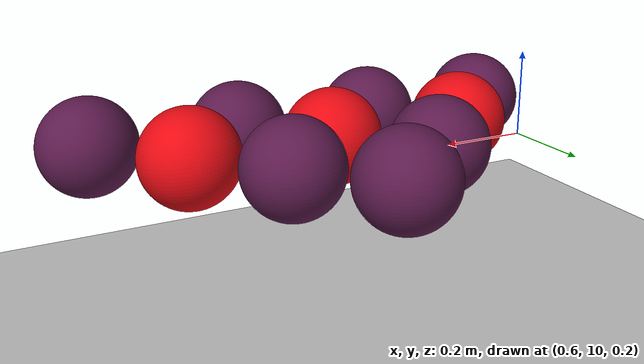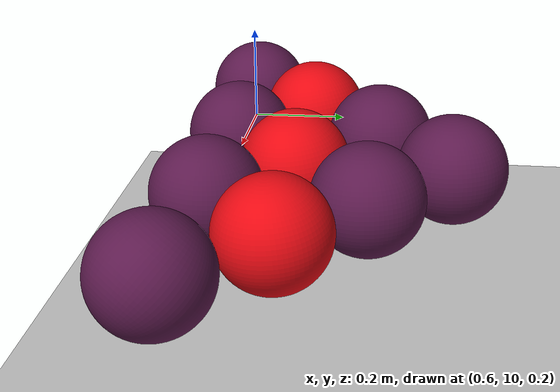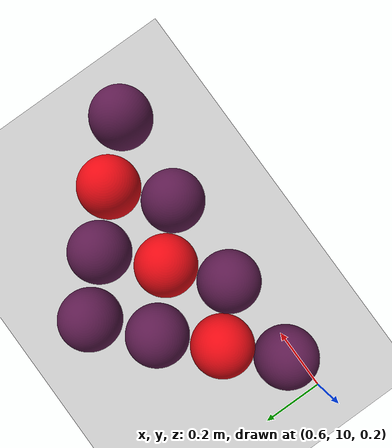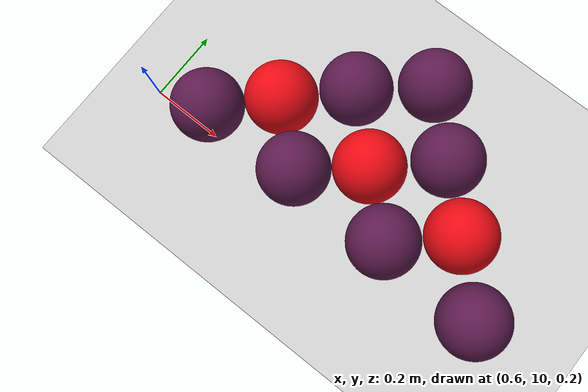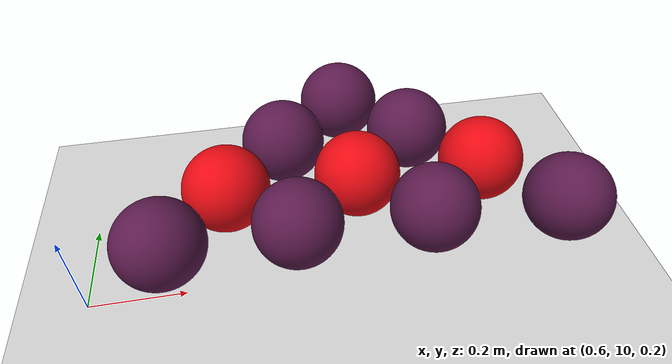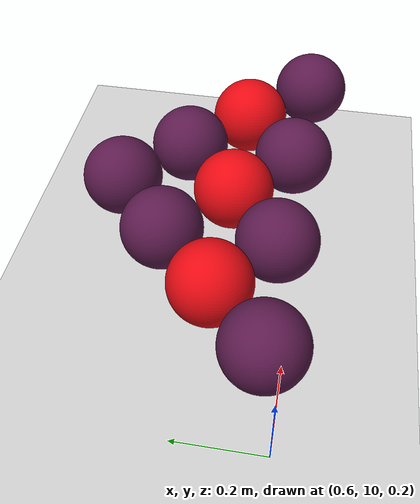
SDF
<sdf version="1.7">
 <world name="default">
  <model name="ground_plane">
   <static>1</static>
   <link name="link">
    <collision name="collision">
     <geometry><plane><normal>0 0 1</normal><size>100 100</size></plane></geometry>
     <surface>
      <contact><collide_bitmask>65535</collide_bitmask></contact>
      <friction><ode><mu>100</mu><mu2>50</mu2></ode></friction>
     </surface>
    </collision>
    <visual name="visual">
     <cast_shadows>0</cast_shadows>
     <geometry><plane><normal>0 0 1</normal><size>100 100</size></plane></geometry>
     <material>
      <script><uri>file://media/materials/scripts/gazebo.material</uri><name>Gazebo/Grey</name></script>
     </material>
    </visual>
   </link>
  </model>
  <model name="ball_red_5">
   <link name="link_1">
    <inertial>
     <mass>1</mass>
     <inertia>
      <ixx>0.166667</ixx>
      <ixy>0</ixy>
      <ixz>0</ixz>
      <iyy>0.166667</iyy>
      <iyz>0</iyz>
      <izz>0.166667</izz>
     </inertia>
    </inertial>
    <visual name="visual">
     <geometry>
      <mesh><uri>/home/entity014/abu2024_ws/src/abu_description/worlds/ball_red.dae</uri><scale>1 1 1</scale></mesh>
     </geometry>
    </visual>
    <collision name="collision">
     <geometry>
      <mesh><uri>/home/entity014/abu2024_ws/src/abu_description/worlds/ball_red.dae</uri><scale>1 1 1</scale></mesh>
     </geometry>
     <surface>
      <friction>
       <ode><mu>1</mu><mu2>1</mu2><fdir1>0 0 0</fdir1><slip1>0</slip1><slip2>0</slip2></ode>
       <torsional>
        <coefficient>1</coefficient>
        <patch_radius>0</patch_radius>
        <surface_radius>0</surface_radius>
        <use_patch_radius>1</use_patch_radius>
        <ode><slip>0</slip></ode>
       </torsional>
      </friction>
      <bounce><restitution_coefficient>0</restitution_coefficient><threshold>1e+06</threshold></bounce>
      <contact>
       <collide_without_contact>0</collide_without_contact>
       <collide_without_contact_bitmask>1</collide_without_contact_bitmask>
       <collide_bitmask>1</collide_bitmask>
       <ode>
        <soft_cfm>0</soft_cfm>
        <soft_erp>0.2</soft_erp>
        <kp>1e+13</kp>
        <kd>1</kd>
        <max_vel>0.01</max_vel>
        <min_depth>0</min_depth>
       </ode>
       <bullet>
        <split_impulse>1</split_impulse>
        <split_impulse_penetration_threshold>-0.01</split_impulse_penetration_threshold>
        <soft_cfm>0</soft_cfm>
        <soft_erp>0.2</soft_erp>
        <kp>1e+13</kp>
        <kd>1</kd>
       </bullet>
      </contact>
     </surface>
    </collision>
   </link>
   <static>0</static>
   <pose>1.18942 10.1655 0.322548 0.10994 0.052948 0.076929</pose>
  </model>
  <model name="ball_empty_0_clone_8_clone_1">
   <link name="link_1">
    <inertial>
     <mass>1</mass>
     <inertia>
      <ixx>0.166667</ixx>
      <ixy>0</ixy>
      <ixz>0</ixz>
      <iyy>0.166667</iyy>
      <iyz>0</iyz>
      <izz>0.166667</izz>
     </inertia>
    </inertial>
    <visual name="visual">
     <geometry>
      <mesh>
       <uri>/home/entity014/abu2024_ws/src/abu_description/worlds/ball_empty.dae</uri>
       <scale>1 1 1</scale>
      </mesh>
     </geometry>
    </visual>
    <collision name="collision">
     <geometry>
      <mesh>
       <uri>/home/entity014/abu2024_ws/src/abu_description/worlds/ball_empty.dae</uri>
       <scale>1 1 1</scale>
      </mesh>
     </geometry>
     <surface>
      <friction>
       <ode><mu>1</mu><mu2>1</mu2><fdir1>0 0 0</fdir1><slip1>0</slip1><slip2>0</slip2></ode>
       <torsional>
        <coefficient>1</coefficient>
        <patch_radius>0</patch_radius>
        <surface_radius>0</surface_radius>
        <use_patch_radius>1</use_patch_radius>
        <ode><slip>0</slip></ode>
       </torsional>
      </friction>
      <bounce><restitution_coefficient>0</restitution_coefficient><threshold>1e+06</threshold></bounce>
      <contact>
       <collide_without_contact>0</collide_without_contact>
       <collide_without_contact_bitmask>1</collide_without_contact_bitmask>
       <collide_bitmask>1</collide_bitmask>
       <ode>
        <soft_cfm>0</soft_cfm>
        <soft_erp>0.2</soft_erp>
        <kp>1e+13</kp>
        <kd>1</kd>
        <max_vel>0.01</max_vel>
        <min_depth>0</min_depth>
       </ode>
       <bullet>
        <split_impulse>1</split_impulse>
        <split_impulse_penetration_threshold>-0.01</split_impulse_penetration_threshold>
        <soft_cfm>0</soft_cfm>
        <soft_erp>0.2</soft_erp>
        <kp>1e+13</kp>
        <kd>1</kd>
       </bullet>
      </contact>
     </surface>
    </collision>
   </link>
   <static>0</static>
   <pose>1.62177 10.0175 0.322545 2.42219 0.496961 1.14836</pose>
  </model>
  <model name="ball_empty_0_clone_8_clone_2">
   <link name="link_1">
    <inertial>
     <mass>1</mass>
     <inertia>
      <ixx>0.166667</ixx>
      <ixy>0</ixy>
      <ixz>0</ixz>
      <iyy>0.166667</iyy>
      <iyz>0</iyz>
      <izz>0.166667</izz>
     </inertia>
    </inertial>
    <visual name="visual">
     <geometry>
      <mesh>
       <uri>/home/entity014/abu2024_ws/src/abu_description/worlds/ball_empty.dae</uri>
       <scale>1 1 1</scale>
      </mesh>
     </geometry>
    </visual>
    <collision name="collision">
     <geometry>
      <mesh>
       <uri>/home/entity014/abu2024_ws/src/abu_description/worlds/ball_empty.dae</uri>
       <scale>1 1 1</scale>
      </mesh>
     </geometry>
     <surface>
      <friction>
       <ode><mu>1</mu><mu2>1</mu2><fdir1>0 0 0</fdir1><slip1>0</slip1><slip2>0</slip2></ode>
       <torsional>
        <coefficient>1</coefficient>
        <patch_radius>0</patch_radius>
        <surface_radius>0</surface_radius>
        <use_patch_radius>1</use_patch_radius>
        <ode><slip>0</slip></ode>
       </torsional>
      </friction>
      <bounce><restitution_coefficient>0</restitution_coefficient><threshold>1e+06</threshold></bounce>
      <contact>
       <collide_without_contact>0</collide_without_contact>
       <collide_without_contact_bitmask>1</collide_without_contact_bitmask>
       <collide_bitmask>1</collide_bitmask>
       <ode>
        <soft_cfm>0</soft_cfm>
        <soft_erp>0.2</soft_erp>
        <kp>1e+13</kp>
        <kd>1</kd>
        <max_vel>0.01</max_vel>
        <min_depth>0</min_depth>
       </ode>
       <bullet>
        <split_impulse>1</split_impulse>
        <split_impulse_penetration_threshold>-0.01</split_impulse_penetration_threshold>
        <soft_cfm>0</soft_cfm>
        <soft_erp>0.2</soft_erp>
        <kp>1e+13</kp>
        <kd>1</kd>
       </bullet>
      </contact>
     </surface>
    </collision>
   </link>
   <static>0</static>
   <pose>1.33196 10.0369 0.322557 -0.031263 0.023654 0.046097</pose>
  </model>
  <model name="ball_empty_0_clone_8_clone_3">
   <link name="link_1">
    <inertial>
     <mass>1</mass>
     <inertia>
      <ixx>0.166667</ixx>
      <ixy>0</ixy>
      <ixz>0</ixz>
      <iyy>0.166667</iyy>
      <iyz>0</iyz>
      <izz>0.166667</izz>
     </inertia>
    </inertial>
    <visual name="visual">
     <geometry>
      <mesh>
       <uri>/home/entity014/abu2024_ws/src/abu_description/worlds/ball_empty.dae</uri>
       <scale>1 1 1</scale>
      </mesh>
     </geometry>
    </visual>
    <collision name="collision">
     <geometry>
      <mesh>
       <uri>/home/entity014/abu2024_ws/src/abu_description/worlds/ball_empty.dae</uri>
       <scale>1 1 1</scale>
      </mesh>
     </geometry>
     <surface>
      <friction>
       <ode><mu>1</mu><mu2>1</mu2><fdir1>0 0 0</fdir1><slip1>0</slip1><slip2>0</slip2></ode>
       <torsional>
        <coefficient>1</coefficient>
        <patch_radius>0</patch_radius>
        <surface_radius>0</surface_radius>
        <use_patch_radius>1</use_patch_radius>
        <ode><slip>0</slip></ode>
       </torsional>
      </friction>
      <bounce><restitution_coefficient>0</restitution_coefficient><threshold>1e+06</threshold></bounce>
      <contact>
       <collide_without_contact>0</collide_without_contact>
       <collide_without_contact_bitmask>1</collide_without_contact_bitmask>
       <collide_bitmask>1</collide_bitmask>
       <ode>
        <soft_cfm>0</soft_cfm>
        <soft_erp>0.2</soft_erp>
        <kp>1e+13</kp>
        <kd>1</kd>
        <max_vel>0.01</max_vel>
        <min_depth>0</min_depth>
       </ode>
       <bullet>
        <split_impulse>1</split_impulse>
        <split_impulse_penetration_threshold>-0.01</split_impulse_penetration_threshold>
        <soft_cfm>0</soft_cfm>
        <soft_erp>0.2</soft_erp>
        <kp>1e+13</kp>
        <kd>1</kd>
       </bullet>
      </contact>
     </surface>
    </collision>
   </link>
   <static>0</static>
   <pose>1.04308 10.0432 0.322556 0.029608 -0.028042 -0.074916</pose>
  </model>
  <model name="ball_empty_0_clone_8_clone_4">
   <link name="link_1">
    <inertial>
     <mass>1</mass>
     <inertia>
      <ixx>0.166667</ixx>
      <ixy>0</ixy>
      <ixz>0</ixz>
      <iyy>0.166667</iyy>
      <iyz>0</iyz>
      <izz>0.166667</izz>
     </inertia>
    </inertial>
    <visual name="visual">
     <geometry>
      <mesh>
       <uri>/home/entity014/abu2024_ws/src/abu_description/worlds/ball_empty.dae</uri>
       <scale>1 1 1</scale>
      </mesh>
     </geometry>
    </visual>
    <collision name="collision">
     <geometry>
      <mesh>
       <uri>/home/entity014/abu2024_ws/src/abu_description/worlds/ball_empty.dae</uri>
       <scale>1 1 1</scale>
      </mesh>
     </geometry>
     <surface>
      <friction>
       <ode><mu>1</mu><mu2>1</mu2><fdir1>0 0 0</fdir1><slip1>0</slip1><slip2>0</slip2></ode>
       <torsional>
        <coefficient>1</coefficient>
        <patch_radius>0</patch_radius>
        <surface_radius>0</surface_radius>
        <use_patch_radius>1</use_patch_radius>
        <ode><slip>0</slip></ode>
       </torsional>
      </friction>
      <bounce><restitution_coefficient>0</restitution_coefficient><threshold>1e+06</threshold></bounce>
      <contact>
       <collide_without_contact>0</collide_without_contact>
       <collide_without_contact_bitmask>1</collide_without_contact_bitmask>
       <collide_bitmask>1</collide_bitmask>
       <ode>
        <soft_cfm>0</soft_cfm>
        <soft_erp>0.2</soft_erp>
        <kp>1e+13</kp>
        <kd>1</kd>
        <max_vel>0.01</max_vel>
        <min_depth>0</min_depth>
       </ode>
       <bullet>
        <split_impulse>1</split_impulse>
        <split_impulse_penetration_threshold>-0.01</split_impulse_penetration_threshold>
        <soft_cfm>0</soft_cfm>
        <soft_erp>0.2</soft_erp>
        <kp>1e+13</kp>
        <kd>1</kd>
       </bullet>
      </contact>
     </surface>
    </collision>
   </link>
   <static>0</static>
   <pose>0.765591 10.037 0.322561 0.011367 -0.035645 0.11514</pose>
  </model>
  <model name="ball_empty_0_clone_8_clone_5">
   <link name="link_1">
    <inertial>
     <mass>1</mass>
     <inertia>
      <ixx>0.166667</ixx>
      <ixy>0</ixy>
      <ixz>0</ixz>
      <iyy>0.166667</iyy>
      <iyz>0</iyz>
      <izz>0.166667</izz>
     </inertia>
    </inertial>
    <visual name="visual">
     <geometry>
      <mesh>
       <uri>/home/entity014/abu2024_ws/src/abu_description/worlds/ball_empty.dae</uri>
       <scale>1 1 1</scale>
      </mesh>
     </geometry>
    </visual>
    <collision name="collision">
     <geometry>
      <mesh>
       <uri>/home/entity014/abu2024_ws/src/abu_description/worlds/ball_empty.dae</uri>
       <scale>1 1 1</scale>
      </mesh>
     </geometry>
     <surface>
      <friction>
       <ode><mu>1</mu><mu2>1</mu2><fdir1>0 0 0</fdir1><slip1>0</slip1><slip2>0</slip2></ode>
       <torsional>
        <coefficient>1</coefficient>
        <patch_radius>0</patch_radius>
        <surface_radius>0</surface_radius>
        <use_patch_radius>1</use_patch_radius>
        <ode><slip>0</slip></ode>
       </torsional>
      </friction>
      <bounce><restitution_coefficient>0</restitution_coefficient><threshold>1e+06</threshold></bounce>
      <contact>
       <collide_without_contact>0</collide_without_contact>
       <collide_without_contact_bitmask>1</collide_without_contact_bitmask>
       <collide_bitmask>1</collide_bitmask>
       <ode>
        <soft_cfm>0</soft_cfm>
        <soft_erp>0.2</soft_erp>
        <kp>1e+13</kp>
        <kd>1</kd>
        <max_vel>0.01</max_vel>
        <min_depth>0</min_depth>
       </ode>
       <bullet>
        <split_impulse>1</split_impulse>
        <split_impulse_penetration_threshold>-0.01</split_impulse_penetration_threshold>
        <soft_cfm>0</soft_cfm>
        <soft_erp>0.2</soft_erp>
        <kp>1e+13</kp>
        <kd>1</kd>
       </bullet>
      </contact>
     </surface>
    </collision>
   </link>
   <static>0</static>
   <pose>1.19147 10.4381 0.322544 0.040089 -0.004293 -3.8e-05</pose>
  </model>
  <model name="ball_empty_0_clone_8_clone_6">
   <link name="link_1">
    <inertial>
     <mass>1</mass>
     <inertia>
      <ixx>0.166667</ixx>
      <ixy>0</ixy>
      <ixz>0</ixz>
      <iyy>0.166667</iyy>
      <iyz>0</iyz>
      <izz>0.166667</izz>
     </inertia>
    </inertial>
    <visual name="visual">
     <geometry>
      <mesh>
       <uri>/home/entity014/abu2024_ws/src/abu_description/worlds/ball_empty.dae</uri>
       <scale>1 1 1</scale>
      </mesh>
     </geometry>
    </visual>
    <collision name="collision">
     <geometry>
      <mesh>
       <uri>/home/entity014/abu2024_ws/src/abu_description/worlds/ball_empty.dae</uri>
       <scale>1 1 1</scale>
      </mesh>
     </geometry>
     <surface>
      <friction>
       <ode><mu>1</mu><mu2>1</mu2><fdir1>0 0 0</fdir1><slip1>0</slip1><slip2>0</slip2></ode>
       <torsional>
        <coefficient>1</coefficient>
        <patch_radius>0</patch_radius>
        <surface_radius>0</surface_radius>
        <use_patch_radius>1</use_patch_radius>
        <ode><slip>0</slip></ode>
       </torsional>
      </friction>
      <bounce><restitution_coefficient>0</restitution_coefficient><threshold>1e+06</threshold></bounce>
      <contact>
       <collide_without_contact>0</collide_without_contact>
       <collide_without_contact_bitmask>1</collide_without_contact_bitmask>
       <collide_bitmask>1</collide_bitmask>
       <ode>
        <soft_cfm>0</soft_cfm>
        <soft_erp>0.2</soft_erp>
        <kp>1e+13</kp>
        <kd>1</kd>
        <max_vel>0.01</max_vel>
        <min_depth>0</min_depth>
       </ode>
       <bullet>
        <split_impulse>1</split_impulse>
        <split_impulse_penetration_threshold>-0.01</split_impulse_penetration_threshold>
        <soft_cfm>0</soft_cfm>
        <soft_erp>0.2</soft_erp>
        <kp>1e+13</kp>
        <kd>1</kd>
       </bullet>
      </contact>
     </surface>
    </collision>
   </link>
   <static>0</static>
   <pose>1.0383 10.3059 0.322544 0.004218 -0.040045 0.005932</pose>
  </model>
  <model name="ball_empty_0_clone_8_clone_7">
   <link name="link_1">
    <inertial>
     <mass>1</mass>
     <inertia>
      <ixx>0.166667</ixx>
      <ixy>0</ixy>
      <ixz>0</ixz>
      <iyy>0.166667</iyy>
      <iyz>0</iyz>
      <izz>0.166667</izz>
     </inertia>
    </inertial>
    <visual name="visual">
     <geometry>
      <mesh>
       <uri>/home/entity014/abu2024_ws/src/abu_description/worlds/ball_empty.dae</uri>
       <scale>1 1 1</scale>
      </mesh>
     </geometry>
    </visual>
    <collision name="collision">
     <geometry>
      <mesh>
       <uri>/home/entity014/abu2024_ws/src/abu_description/worlds/ball_empty.dae</uri>
       <scale>1 1 1</scale>
      </mesh>
     </geometry>
     <surface>
      <friction>
       <ode><mu>1</mu><mu2>1</mu2><fdir1>0 0 0</fdir1><slip1>0</slip1><slip2>0</slip2></ode>
       <torsional>
        <coefficient>1</coefficient>
        <patch_radius>0</patch_radius>
        <surface_radius>0</surface_radius>
        <use_patch_radius>1</use_patch_radius>
        <ode><slip>0</slip></ode>
       </torsional>
      </friction>
      <bounce><restitution_coefficient>0</restitution_coefficient><threshold>1e+06</threshold></bounce>
      <contact>
       <collide_without_contact>0</collide_without_contact>
       <collide_without_contact_bitmask>1</collide_without_contact_bitmask>
       <collide_bitmask>1</collide_bitmask>
       <ode>
        <soft_cfm>0</soft_cfm>
        <soft_erp>0.2</soft_erp>
        <kp>1e+13</kp>
        <kd>1</kd>
        <max_vel>0.01</max_vel>
        <min_depth>0</min_depth>
       </ode>
       <bullet>
        <split_impulse>1</split_impulse>
        <split_impulse_penetration_threshold>-0.01</split_impulse_penetration_threshold>
        <soft_cfm>0</soft_cfm>
        <soft_erp>0.2</soft_erp>
        <kp>1e+13</kp>
        <kd>1</kd>
       </bullet>
      </contact>
     </surface>
    </collision>
   </link>
   <static>0</static>
   <pose>1.33565 10.3007 0.322544 0.040052 -0.004506 0.001908</pose>
  </model>
  <model name="ball_red_5_clone_0">
   <link name="link_1">
    <inertial>
     <mass>1</mass>
     <inertia>
      <ixx>0.166667</ixx>
      <ixy>0</ixy>
      <ixz>0</ixz>
      <iyy>0.166667</iyy>
      <iyz>0</iyz>
      <izz>0.166667</izz>
     </inertia>
    </inertial>
    <visual name="visual">
     <geometry>
      <mesh><uri>/home/entity014/abu2024_ws/src/abu_description/worlds/ball_red.dae</uri><scale>1 1 1</scale></mesh>
     </geometry>
    </visual>
    <collision name="collision">
     <geometry>
      <mesh><uri>/home/entity014/abu2024_ws/src/abu_description/worlds/ball_red.dae</uri><scale>1 1 1</scale></mesh>
     </geometry>
     <surface>
      <friction>
       <ode><mu>1</mu><mu2>1</mu2><fdir1>0 0 0</fdir1><slip1>0</slip1><slip2>0</slip2></ode>
       <torsional>
        <coefficient>1</coefficient>
        <patch_radius>0</patch_radius>
        <surface_radius>0</surface_radius>
        <use_patch_radius>1</use_patch_radius>
        <ode><slip>0</slip></ode>
       </torsional>
      </friction>
      <bounce><restitution_coefficient>0</restitution_coefficient><threshold>1e+06</threshold></bounce>
      <contact>
       <collide_without_contact>0</collide_without_contact>
       <collide_without_contact_bitmask>1</collide_without_contact_bitmask>
       <collide_bitmask>1</collide_bitmask>
       <ode>
        <soft_cfm>0</soft_cfm>
        <soft_erp>0.2</soft_erp>
        <kp>1e+13</kp>
        <kd>1</kd>
        <max_vel>0.01</max_vel>
        <min_depth>0</min_depth>
       </ode>
       <bullet>
        <split_impulse>1</split_impulse>
        <split_impulse_penetration_threshold>-0.01</split_impulse_penetration_threshold>
        <soft_cfm>0</soft_cfm>
        <soft_erp>0.2</soft_erp>
        <kp>1e+13</kp>
        <kd>1</kd>
       </bullet>
      </contact>
     </surface>
    </collision>
   </link>
   <static>0</static>
   <pose>0.901451 10.1697 0.322607 0.201275 -0.13361 -0.051513</pose>
  </model>
  <model name="ball_red_5_clone_3">
   <link name="link_1">
    <inertial>
     <mass>1</mass>
     <inertia>
      <ixx>0.166667</ixx>
      <ixy>0</ixy>
      <ixz>0</ixz>
      <iyy>0.166667</iyy>
      <iyz>0</iyz>
      <izz>0.166667</izz>
     </inertia>
    </inertial>
    <visual name="visual">
     <geometry>
      <mesh><uri>/home/entity014/abu2024_ws/src/abu_description/worlds/ball_red.dae</uri><scale>1 1 1</scale></mesh>
     </geometry>
    </visual>
    <collision name="collision">
     <geometry>
      <mesh><uri>/home/entity014/abu2024_ws/src/abu_description/worlds/ball_red.dae</uri><scale>1 1 1</scale></mesh>
     </geometry>
     <surface>
      <friction>
       <ode><mu>1</mu><mu2>1</mu2><fdir1>0 0 0</fdir1><slip1>0</slip1><slip2>0</slip2></ode>
       <torsional>
        <coefficient>1</coefficient>
        <patch_radius>0</patch_radius>
        <surface_radius>0</surface_radius>
        <use_patch_radius>1</use_patch_radius>
        <ode><slip>0</slip></ode>
       </torsional>
      </friction>
      <bounce><restitution_coefficient>0</restitution_coefficient><threshold>1e+06</threshold></bounce>
      <contact>
       <collide_without_contact>0</collide_without_contact>
       <collide_without_contact_bitmask>1</collide_without_contact_bitmask>
       <collide_bitmask>1</collide_bitmask>
       <ode>
        <soft_cfm>0</soft_cfm>
        <soft_erp>0.2</soft_erp>
        <kp>1e+13</kp>
        <kd>1</kd>
        <max_vel>0.01</max_vel>
        <min_depth>0</min_depth>
       </ode>
       <bullet>
        <split_impulse>1</split_impulse>
        <split_impulse_penetration_threshold>-0.01</split_impulse_penetration_threshold>
        <soft_cfm>0</soft_cfm>
        <soft_erp>0.2</soft_erp>
        <kp>1e+13</kp>
        <kd>1</kd>
       </bullet>
      </contact>
     </surface>
    </collision>
   </link>
   <static>0</static>
   <pose>1.47575 10.1667 0.322569 0.06695 0.109273 -0.094992</pose>
  </model>
 </world>
</sdf>
